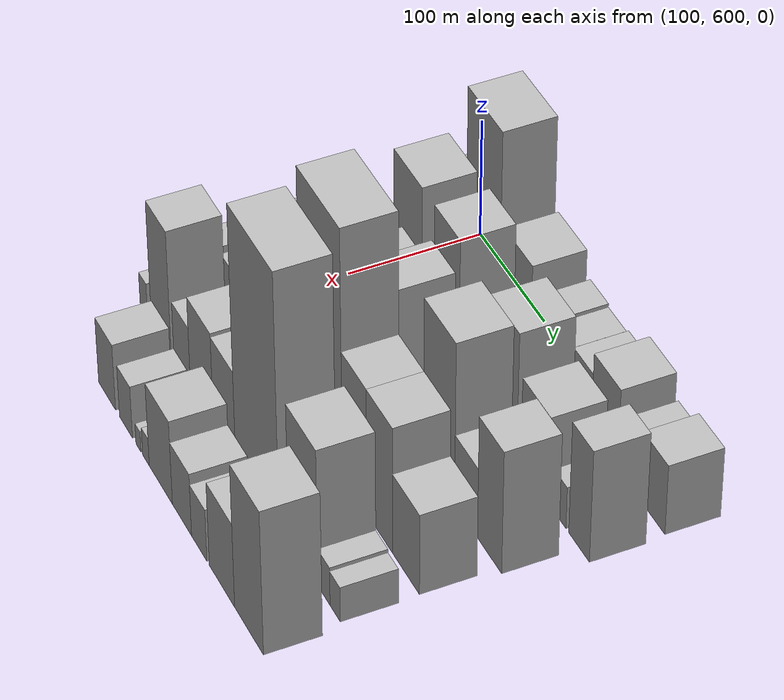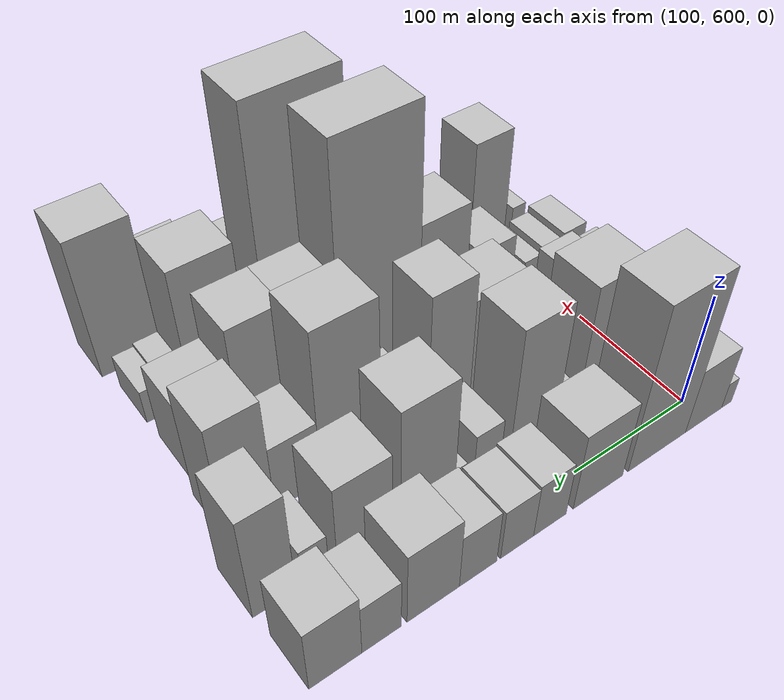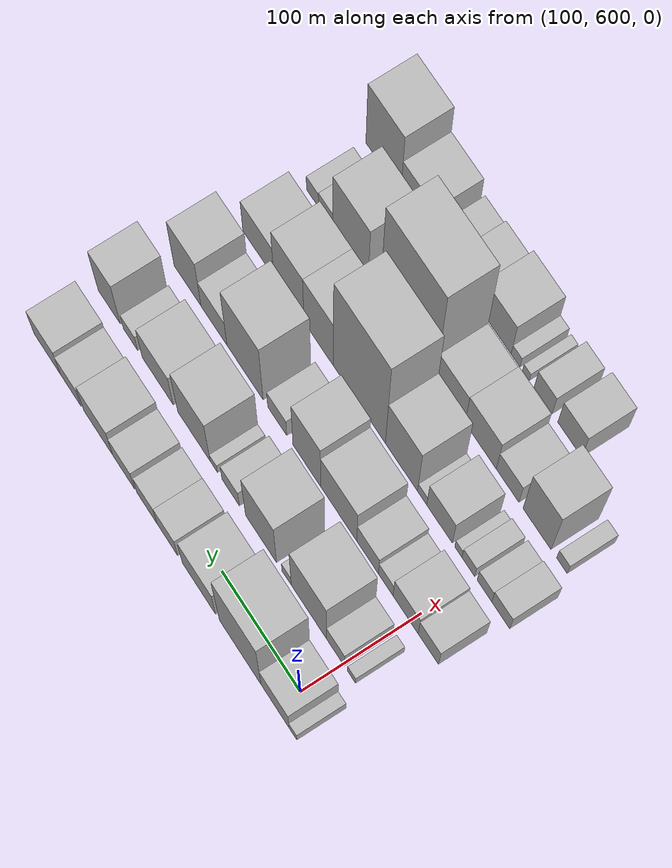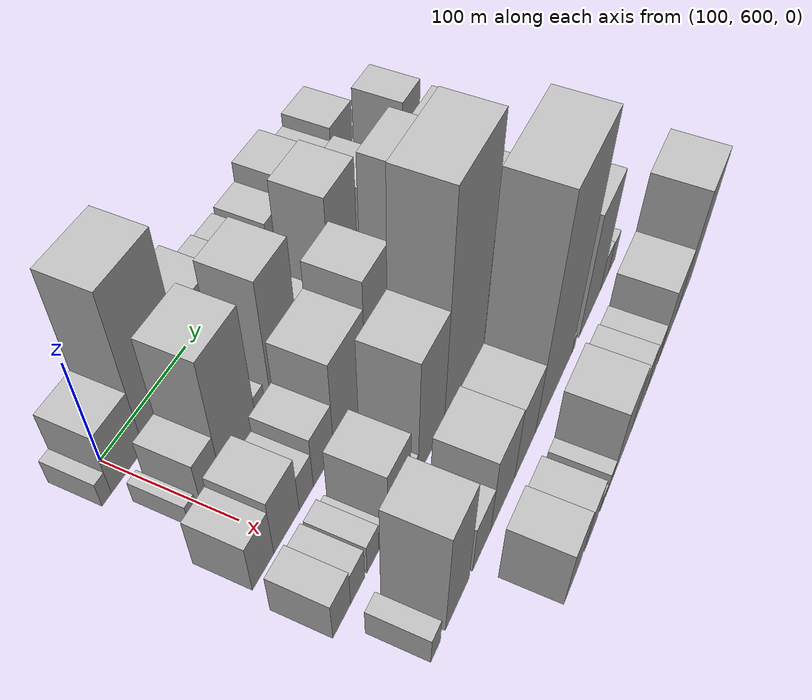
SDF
<sdf version="1.6">
 <world name="default">
  <model name="building_45">
   <static>1</static>
   <pose>100.0000 578.1978 0 0.000000 0.000000 0.000000</pose>
   <link name="link">
    <pose>0 0 12.00 0 0 0</pose>
    <collision name="collision"><geometry><box><size>40.0000 9.8584 24.0000</size></box></geometry></collision>
    <visual name="visual">
     <cast_shadows>0</cast_shadows>
     <geometry><box><size>40.0000 9.8584 24.0000</size></box></geometry>
     <material>
      <script>
       <uri>model://HANNAS_wall/materials/scripts</uri>
       <uri>model://HANNAS_wall/materials/textures</uri>
       <name>vrc/HANNAS_wall</name>
      </script>
     </material>
    </visual>
   </link>
  </model>
  <model name="building_46">
   <static>1</static>
   <pose>100.0000 600.8912 0 0.000000 0.000000 0.000000</pose>
   <link name="link">
    <pose>0 0 30.00 0 0 0</pose>
    <collision name="collision"><geometry><box><size>40.0000 35.5284 60.0000</size></box></geometry></collision>
    <visual name="visual">
     <cast_shadows>0</cast_shadows>
     <geometry><box><size>40.0000 35.5284 60.0000</size></box></geometry>
     <material>
      <script>
       <uri>model://HANNAS_wall/materials/scripts</uri>
       <uri>model://HANNAS_wall/materials/textures</uri>
       <name>vrc/HANNAS_wall</name>
      </script>
     </material>
    </visual>
   </link>
  </model>
  <model name="building_47">
   <static>1</static>
   <pose>100.0000 645.2896 0 0.000000 0.000000 0.000000</pose>
   <link name="link">
    <pose>0 0 75.00 0 0 0</pose>
    <collision name="collision"><geometry><box><size>40.0000 53.2685 150.0000</size></box></geometry></collision>
    <visual name="visual">
     <cast_shadows>0</cast_shadows>
     <geometry><box><size>40.0000 53.2685 150.0000</size></box></geometry>
     <material>
      <script>
       <uri>model://HANNAS_wall/materials/scripts</uri>
       <uri>model://HANNAS_wall/materials/textures</uri>
       <name>vrc/HANNAS_wall</name>
      </script>
     </material>
    </visual>
   </link>
  </model>
  <model name="building_48">
   <static>1</static>
   <pose>100.0000 698.4418 0 0.000000 0.000000 0.000000</pose>
   <link name="link">
    <pose>0 0 36.00 0 0 0</pose>
    <collision name="collision"><geometry><box><size>40.0000 43.0359 72.0000</size></box></geometry></collision>
    <visual name="visual">
     <cast_shadows>0</cast_shadows>
     <geometry><box><size>40.0000 43.0359 72.0000</size></box></geometry>
     <material>
      <script>
       <uri>model://HANNAS_wall/materials/scripts</uri>
       <uri>model://HANNAS_wall/materials/textures</uri>
       <name>vrc/HANNAS_wall</name>
      </script>
     </material>
    </visual>
   </link>
  </model>
  <model name="building_49">
   <static>1</static>
   <pose>100.0000 739.4240 0 0.000000 0.000000 0.000000</pose>
   <link name="link">
    <pose>0 0 25.50 0 0 0</pose>
    <collision name="collision"><geometry><box><size>40.0000 26.9285 51.0000</size></box></geometry></collision>
    <visual name="visual">
     <cast_shadows>0</cast_shadows>
     <geometry><box><size>40.0000 26.9285 51.0000</size></box></geometry>
     <material>
      <script>
       <uri>model://HANNAS_wall/materials/scripts</uri>
       <uri>model://HANNAS_wall/materials/textures</uri>
       <name>vrc/HANNAS_wall</name>
      </script>
     </material>
    </visual>
   </link>
  </model>
  <model name="building_50">
   <static>1</static>
   <pose>100.0000 766.0559 0 0.000000 0.000000 0.000000</pose>
   <link name="link">
    <pose>0 0 24.00 0 0 0</pose>
    <collision name="collision"><geometry><box><size>40.0000 26.3352 48.0000</size></box></geometry></collision>
    <visual name="visual">
     <cast_shadows>0</cast_shadows>
     <geometry><box><size>40.0000 26.3352 48.0000</size></box></geometry>
     <material>
      <script>
       <uri>model://HANNAS_wall/materials/scripts</uri>
       <uri>model://HANNAS_wall/materials/textures</uri>
       <name>vrc/HANNAS_wall</name>
      </script>
     </material>
    </visual>
   </link>
  </model>
  <model name="building_51">
   <static>1</static>
   <pose>100.0000 796.5793 0 0.000000 0.000000 0.000000</pose>
   <link name="link">
    <pose>0 0 25.50 0 0 0</pose>
    <collision name="collision"><geometry><box><size>40.0000 28.7116 51.0000</size></box></geometry></collision>
    <visual name="visual">
     <cast_shadows>0</cast_shadows>
     <geometry><box><size>40.0000 28.7116 51.0000</size></box></geometry>
     <material>
      <script>
       <uri>model://HANNAS_wall/materials/scripts</uri>
       <uri>model://HANNAS_wall/materials/textures</uri>
       <name>vrc/HANNAS_wall</name>
      </script>
     </material>
    </visual>
   </link>
  </model>
  <model name="building_52">
   <static>1</static>
   <pose>100.0000 830.1415 0 0.000000 0.000000 0.000000</pose>
   <link name="link">
    <pose>0 0 34.50 0 0 0</pose>
    <collision name="collision"><geometry><box><size>40.0000 38.4129 69.0000</size></box></geometry></collision>
    <visual name="visual">
     <cast_shadows>0</cast_shadows>
     <geometry><box><size>40.0000 38.4129 69.0000</size></box></geometry>
     <material>
      <script>
       <uri>model://HANNAS_wall/materials/scripts</uri>
       <uri>model://HANNAS_wall/materials/textures</uri>
       <name>vrc/HANNAS_wall</name>
      </script>
     </material>
    </visual>
   </link>
  </model>
  <model name="building_53">
   <static>1</static>
   <pose>100.0000 867.1216 0 0.000000 0.000000 0.000000</pose>
   <link name="link">
    <pose>0 0 24.00 0 0 0</pose>
    <collision name="collision"><geometry><box><size>40.0000 27.5473 48.0000</size></box></geometry></collision>
    <visual name="visual">
     <cast_shadows>0</cast_shadows>
     <geometry><box><size>40.0000 27.5473 48.0000</size></box></geometry>
     <material>
      <script>
       <uri>model://HANNAS_wall/materials/scripts</uri>
       <uri>model://HANNAS_wall/materials/textures</uri>
       <name>vrc/HANNAS_wall</name>
      </script>
     </material>
    </visual>
   </link>
  </model>
  <model name="building_54">
   <static>1</static>
   <pose>100.0000 898.6010 0 0.000000 0.000000 0.000000</pose>
   <link name="link">
    <pose>0 0 30.00 0 0 0</pose>
    <collision name="collision"><geometry><box><size>40.0000 35.4115 60.0000</size></box></geometry></collision>
    <visual name="visual">
     <cast_shadows>0</cast_shadows>
     <geometry><box><size>40.0000 35.4115 60.0000</size></box></geometry>
     <material>
      <script>
       <uri>model://HANNAS_wall/materials/scripts</uri>
       <uri>model://HANNAS_wall/materials/textures</uri>
       <name>vrc/HANNAS_wall</name>
      </script>
     </material>
    </visual>
   </link>
  </model>
  <model name="building_93">
   <static>1</static>
   <pose>155.0000 589.1931 0 0.000000 0.000000 0.000000</pose>
   <link name="link">
    <pose>0 0 10.50 0 0 0</pose>
    <collision name="collision"><geometry><box><size>40.0000 10.1146 21.0000</size></box></geometry></collision>
    <visual name="visual">
     <cast_shadows>0</cast_shadows>
     <geometry><box><size>40.0000 10.1146 21.0000</size></box></geometry>
     <material>
      <script>
       <uri>model://HANNAS_wall/materials/scripts</uri>
       <uri>model://HANNAS_wall/materials/textures</uri>
       <name>vrc/HANNAS_wall</name>
      </script>
     </material>
    </visual>
   </link>
  </model>
  <model name="building_94">
   <static>1</static>
   <pose>155.0000 609.5684 0 0.000000 0.000000 0.000000</pose>
   <link name="link">
    <pose>0 0 22.50 0 0 0</pose>
    <collision name="collision"><geometry><box><size>40.0000 22.6360 45.0000</size></box></geometry></collision>
    <visual name="visual">
     <cast_shadows>0</cast_shadows>
     <geometry><box><size>40.0000 22.6360 45.0000</size></box></geometry>
     <material>
      <script>
       <uri>model://HANNAS_wall/materials/scripts</uri>
       <uri>model://HANNAS_wall/materials/textures</uri>
       <name>vrc/HANNAS_wall</name>
      </script>
     </material>
    </visual>
   </link>
  </model>
  <model name="building_95">
   <static>1</static>
   <pose>155.0000 643.2905 0 0.000000 0.000000 0.000000</pose>
   <link name="link">
    <pose>0 0 58.50 0 0 0</pose>
    <collision name="collision"><geometry><box><size>40.0000 44.8080 117.0000</size></box></geometry></collision>
    <visual name="visual">
     <cast_shadows>0</cast_shadows>
     <geometry><box><size>40.0000 44.8080 117.0000</size></box></geometry>
     <material>
      <script>
       <uri>model://HANNAS_wall/materials/scripts</uri>
       <uri>model://HANNAS_wall/materials/textures</uri>
       <name>vrc/HANNAS_wall</name>
      </script>
     </material>
    </visual>
   </link>
  </model>
  <model name="building_96">
   <static>1</static>
   <pose>155.0000 671.6743 0 0.000000 0.000000 0.000000</pose>
   <link name="link">
    <pose>0 0 13.50 0 0 0</pose>
    <collision name="collision"><geometry><box><size>40.0000 11.9597 27.0000</size></box></geometry></collision>
    <visual name="visual">
     <cast_shadows>0</cast_shadows>
     <geometry><box><size>40.0000 11.9597 27.0000</size></box></geometry>
     <material>
      <script>
       <uri>model://HANNAS_wall/materials/scripts</uri>
       <uri>model://HANNAS_wall/materials/textures</uri>
       <name>vrc/HANNAS_wall</name>
      </script>
     </material>
    </visual>
   </link>
  </model>
  <model name="building_97">
   <static>1</static>
   <pose>155.0000 704.5367 0 0.000000 0.000000 0.000000</pose>
   <link name="link">
    <pose>0 0 58.50 0 0 0</pose>
    <collision name="collision"><geometry><box><size>40.0000 39.7651 117.0000</size></box></geometry></collision>
    <visual name="visual">
     <cast_shadows>0</cast_shadows>
     <geometry><box><size>40.0000 39.7651 117.0000</size></box></geometry>
     <material>
      <script>
       <uri>model://HANNAS_wall/materials/scripts</uri>
       <uri>model://HANNAS_wall/materials/textures</uri>
       <name>vrc/HANNAS_wall</name>
      </script>
     </material>
    </visual>
   </link>
  </model>
  <model name="building_98">
   <static>1</static>
   <pose>155.0000 743.6605 0 0.000000 0.000000 0.000000</pose>
   <link name="link">
    <pose>0 0 21.00 0 0 0</pose>
    <collision name="collision"><geometry><box><size>40.0000 22.4826 42.0000</size></box></geometry></collision>
    <visual name="visual">
     <cast_shadows>0</cast_shadows>
     <geometry><box><size>40.0000 22.4826 42.0000</size></box></geometry>
     <material>
      <script>
       <uri>model://HANNAS_wall/materials/scripts</uri>
       <uri>model://HANNAS_wall/materials/textures</uri>
       <name>vrc/HANNAS_wall</name>
      </script>
     </material>
    </visual>
   </link>
  </model>
  <model name="building_99">
   <static>1</static>
   <pose>155.0000 765.6775 0 0.000000 0.000000 0.000000</pose>
   <link name="link">
    <pose>0 0 10.50 0 0 0</pose>
    <collision name="collision"><geometry><box><size>40.0000 9.5513 21.0000</size></box></geometry></collision>
    <visual name="visual">
     <cast_shadows>0</cast_shadows>
     <geometry><box><size>40.0000 9.5513 21.0000</size></box></geometry>
     <material>
      <script>
       <uri>model://HANNAS_wall/materials/scripts</uri>
       <uri>model://HANNAS_wall/materials/textures</uri>
       <name>vrc/HANNAS_wall</name>
      </script>
     </material>
    </visual>
   </link>
  </model>
  <model name="building_100">
   <static>1</static>
   <pose>155.0000 791.6637 0 0.000000 0.000000 0.000000</pose>
   <link name="link">
    <pose>0 0 54.00 0 0 0</pose>
    <collision name="collision"><geometry><box><size>40.0000 42.4212 108.0000</size></box></geometry></collision>
    <visual name="visual">
     <cast_shadows>0</cast_shadows>
     <geometry><box><size>40.0000 42.4212 108.0000</size></box></geometry>
     <material>
      <script>
       <uri>model://HANNAS_wall/materials/scripts</uri>
       <uri>model://HANNAS_wall/materials/textures</uri>
       <name>vrc/HANNAS_wall</name>
      </script>
     </material>
    </visual>
   </link>
  </model>
  <model name="building_101">
   <static>1</static>
   <pose>155.0000 839.4511 0 0.000000 0.000000 0.000000</pose>
   <link name="link">
    <pose>0 0 37.50 0 0 0</pose>
    <collision name="collision"><geometry><box><size>40.0000 41.1534 75.0000</size></box></geometry></collision>
    <visual name="visual">
     <cast_shadows>0</cast_shadows>
     <geometry><box><size>40.0000 41.1534 75.0000</size></box></geometry>
     <material>
      <script>
       <uri>model://HANNAS_wall/materials/scripts</uri>
       <uri>model://HANNAS_wall/materials/textures</uri>
       <name>vrc/HANNAS_wall</name>
      </script>
     </material>
    </visual>
   </link>
  </model>
  <model name="building_102">
   <static>1</static>
   <pose>155.0000 875.5806 0 0.000000 0.000000 0.000000</pose>
   <link name="link">
    <pose>0 0 18.00 0 0 0</pose>
    <collision name="collision"><geometry><box><size>40.0000 19.1056 36.0000</size></box></geometry></collision>
    <visual name="visual">
     <cast_shadows>0</cast_shadows>
     <geometry><box><size>40.0000 19.1056 36.0000</size></box></geometry>
     <material>
      <script>
       <uri>model://HANNAS_wall/materials/scripts</uri>
       <uri>model://HANNAS_wall/materials/textures</uri>
       <name>vrc/HANNAS_wall</name>
      </script>
     </material>
    </visual>
   </link>
  </model>
  <model name="building_103">
   <static>1</static>
   <pose>155.0000 903.9660 0 0.000000 0.000000 0.000000</pose>
   <link name="link">
    <pose>0 0 48.00 0 0 0</pose>
    <collision name="collision"><geometry><box><size>40.0000 29.6651 96.0000</size></box></geometry></collision>
    <visual name="visual">
     <cast_shadows>0</cast_shadows>
     <geometry><box><size>40.0000 29.6651 96.0000</size></box></geometry>
     <material>
      <script>
       <uri>model://HANNAS_wall/materials/scripts</uri>
       <uri>model://HANNAS_wall/materials/textures</uri>
       <name>vrc/HANNAS_wall</name>
      </script>
     </material>
    </visual>
   </link>
  </model>
  <model name="building_146">
   <static>1</static>
   <pose>210.0000 576.7149 0 0.000000 0.000000 0.000000</pose>
   <link name="link">
    <pose>0 0 24.00 0 0 0</pose>
    <collision name="collision"><geometry><box><size>40.0000 25.4367 48.0000</size></box></geometry></collision>
    <visual name="visual">
     <cast_shadows>0</cast_shadows>
     <geometry><box><size>40.0000 25.4367 48.0000</size></box></geometry>
     <material>
      <script>
       <uri>model://HANNAS_wall/materials/scripts</uri>
       <uri>model://HANNAS_wall/materials/textures</uri>
       <name>vrc/HANNAS_wall</name>
      </script>
     </material>
    </visual>
   </link>
  </model>
  <model name="building_147">
   <static>1</static>
   <pose>210.0000 605.2131 0 0.000000 0.000000 0.000000</pose>
   <link name="link">
    <pose>0 0 28.50 0 0 0</pose>
    <collision name="collision"><geometry><box><size>40.0000 31.5597 57.0000</size></box></geometry></collision>
    <visual name="visual">
     <cast_shadows>0</cast_shadows>
     <geometry><box><size>40.0000 31.5597 57.0000</size></box></geometry>
     <material>
      <script>
       <uri>model://HANNAS_wall/materials/scripts</uri>
       <uri>model://HANNAS_wall/materials/textures</uri>
       <name>vrc/HANNAS_wall</name>
      </script>
     </material>
    </visual>
   </link>
  </model>
  <model name="building_148">
   <static>1</static>
   <pose>210.0000 630.2211 0 0.000000 0.000000 0.000000</pose>
   <link name="link">
    <pose>0 0 18.00 0 0 0</pose>
    <collision name="collision"><geometry><box><size>40.0000 18.4562 36.0000</size></box></geometry></collision>
    <visual name="visual">
     <cast_shadows>0</cast_shadows>
     <geometry><box><size>40.0000 18.4562 36.0000</size></box></geometry>
     <material>
      <script>
       <uri>model://HANNAS_wall/materials/scripts</uri>
       <uri>model://HANNAS_wall/materials/textures</uri>
       <name>vrc/HANNAS_wall</name>
      </script>
     </material>
    </visual>
   </link>
  </model>
  <model name="building_149">
   <static>1</static>
   <pose>210.0000 653.2217 0 0.000000 0.000000 0.000000</pose>
   <link name="link">
    <pose>0 0 25.50 0 0 0</pose>
    <collision name="collision"><geometry><box><size>40.0000 27.5450 51.0000</size></box></geometry></collision>
    <visual name="visual">
     <cast_shadows>0</cast_shadows>
     <geometry><box><size>40.0000 27.5450 51.0000</size></box></geometry>
     <material>
      <script>
       <uri>model://HANNAS_wall/materials/scripts</uri>
       <uri>model://HANNAS_wall/materials/textures</uri>
       <name>vrc/HANNAS_wall</name>
      </script>
     </material>
    </visual>
   </link>
  </model>
  <model name="building_150">
   <static>1</static>
   <pose>210.0000 689.9725 0 0.000000 0.000000 0.000000</pose>
   <link name="link">
    <pose>0 0 45.00 0 0 0</pose>
    <collision name="collision"><geometry><box><size>40.0000 45.9565 90.0000</size></box></geometry></collision>
    <visual name="visual">
     <cast_shadows>0</cast_shadows>
     <geometry><box><size>40.0000 45.9565 90.0000</size></box></geometry>
     <material>
      <script>
       <uri>model://HANNAS_wall/materials/scripts</uri>
       <uri>model://HANNAS_wall/materials/textures</uri>
       <name>vrc/HANNAS_wall</name>
      </script>
     </material>
    </visual>
   </link>
  </model>
  <model name="building_151">
   <static>1</static>
   <pose>210.0000 730.8962 0 0.000000 0.000000 0.000000</pose>
   <link name="link">
    <pose>0 0 57.00 0 0 0</pose>
    <collision name="collision"><geometry><box><size>40.0000 35.8911 114.0000</size></box></geometry></collision>
    <visual name="visual">
     <cast_shadows>0</cast_shadows>
     <geometry><box><size>40.0000 35.8911 114.0000</size></box></geometry>
     <material>
      <script>
       <uri>model://HANNAS_wall/materials/scripts</uri>
       <uri>model://HANNAS_wall/materials/textures</uri>
       <name>vrc/HANNAS_wall</name>
      </script>
     </material>
    </visual>
   </link>
  </model>
  <model name="building_152">
   <static>1</static>
   <pose>210.0000 769.1868 0 0.000000 0.000000 0.000000</pose>
   <link name="link">
    <pose>0 0 21.00 0 0 0</pose>
    <collision name="collision"><geometry><box><size>40.0000 24.6900 42.0000</size></box></geometry></collision>
    <visual name="visual">
     <cast_shadows>0</cast_shadows>
     <geometry><box><size>40.0000 24.6900 42.0000</size></box></geometry>
     <material>
      <script>
       <uri>model://HANNAS_wall/materials/scripts</uri>
       <uri>model://HANNAS_wall/materials/textures</uri>
       <name>vrc/HANNAS_wall</name>
      </script>
     </material>
    </visual>
   </link>
  </model>
  <model name="building_153">
   <static>1</static>
   <pose>210.0000 811.1720 0 0.000000 0.000000 0.000000</pose>
   <link name="link">
    <pose>0 0 69.00 0 0 0</pose>
    <collision name="collision"><geometry><box><size>40.0000 47.2804 138.0000</size></box></geometry></collision>
    <visual name="visual">
     <cast_shadows>0</cast_shadows>
     <geometry><box><size>40.0000 47.2804 138.0000</size></box></geometry>
     <material>
      <script>
       <uri>model://HANNAS_wall/materials/scripts</uri>
       <uri>model://HANNAS_wall/materials/textures</uri>
       <name>vrc/HANNAS_wall</name>
      </script>
     </material>
    </visual>
   </link>
  </model>
  <model name="building_154">
   <static>1</static>
   <pose>210.0000 851.9884 0 0.000000 0.000000 0.000000</pose>
   <link name="link">
    <pose>0 0 30.00 0 0 0</pose>
    <collision name="collision"><geometry><box><size>40.0000 34.3523 60.0000</size></box></geometry></collision>
    <visual name="visual">
     <cast_shadows>0</cast_shadows>
     <geometry><box><size>40.0000 34.3523 60.0000</size></box></geometry>
     <material>
      <script>
       <uri>model://HANNAS_wall/materials/scripts</uri>
       <uri>model://HANNAS_wall/materials/textures</uri>
       <name>vrc/HANNAS_wall</name>
      </script>
     </material>
    </visual>
   </link>
  </model>
  <model name="building_155">
   <static>1</static>
   <pose>210.0000 887.0490 0 0.000000 0.000000 0.000000</pose>
   <link name="link">
    <pose>0 0 52.50 0 0 0</pose>
    <collision name="collision"><geometry><box><size>40.0000 35.7690 105.0000</size></box></geometry></collision>
    <visual name="visual">
     <cast_shadows>0</cast_shadows>
     <geometry><box><size>40.0000 35.7690 105.0000</size></box></geometry>
     <material>
      <script>
       <uri>model://HANNAS_wall/materials/scripts</uri>
       <uri>model://HANNAS_wall/materials/textures</uri>
       <name>vrc/HANNAS_wall</name>
      </script>
     </material>
    </visual>
   </link>
  </model>
  <model name="building_195">
   <static>1</static>
   <pose>265.0000 568.9908 0 0.000000 0.000000 0.000000</pose>
   <link name="link">
    <pose>0 0 19.50 0 0 0</pose>
    <collision name="collision"><geometry><box><size>40.0000 22.3531 39.0000</size></box></geometry></collision>
    <visual name="visual">
     <cast_shadows>0</cast_shadows>
     <geometry><box><size>40.0000 22.3531 39.0000</size></box></geometry>
     <material>
      <script>
       <uri>model://HANNAS_wall/materials/scripts</uri>
       <uri>model://HANNAS_wall/materials/textures</uri>
       <name>vrc/HANNAS_wall</name>
      </script>
     </material>
    </visual>
   </link>
  </model>
  <model name="building_196">
   <static>1</static>
   <pose>265.0000 589.3257 0 0.000000 0.000000 0.000000</pose>
   <link name="link">
    <pose>0 0 16.50 0 0 0</pose>
    <collision name="collision"><geometry><box><size>40.0000 18.3167 33.0000</size></box></geometry></collision>
    <visual name="visual">
     <cast_shadows>0</cast_shadows>
     <geometry><box><size>40.0000 18.3167 33.0000</size></box></geometry>
     <material>
      <script>
       <uri>model://HANNAS_wall/materials/scripts</uri>
       <uri>model://HANNAS_wall/materials/textures</uri>
       <name>vrc/HANNAS_wall</name>
      </script>
     </material>
    </visual>
   </link>
  </model>
  <model name="building_197">
   <static>1</static>
   <pose>265.0000 609.4988 0 0.000000 0.000000 0.000000</pose>
   <link name="link">
    <pose>0 0 15.00 0 0 0</pose>
    <collision name="collision"><geometry><box><size>40.0000 16.0295 30.0000</size></box></geometry></collision>
    <visual name="visual">
     <cast_shadows>0</cast_shadows>
     <geometry><box><size>40.0000 16.0295 30.0000</size></box></geometry>
     <material>
      <script>
       <uri>model://HANNAS_wall/materials/scripts</uri>
       <uri>model://HANNAS_wall/materials/textures</uri>
       <name>vrc/HANNAS_wall</name>
      </script>
     </material>
    </visual>
   </link>
  </model>
  <model name="building_198">
   <static>1</static>
   <pose>265.0000 622.0461 0 0.000000 0.000000 0.000000</pose>
   <link name="link">
    <pose>0 0 10.50 0 0 0</pose>
    <collision name="collision"><geometry><box><size>40.0000 9.0651 21.0000</size></box></geometry></collision>
    <visual name="visual">
     <cast_shadows>0</cast_shadows>
     <geometry><box><size>40.0000 9.0651 21.0000</size></box></geometry>
     <material>
      <script>
       <uri>model://HANNAS_wall/materials/scripts</uri>
       <uri>model://HANNAS_wall/materials/textures</uri>
       <name>vrc/HANNAS_wall</name>
      </script>
     </material>
    </visual>
   </link>
  </model>
  <model name="building_199">
   <static>1</static>
   <pose>265.0000 645.7452 0 0.000000 0.000000 0.000000</pose>
   <link name="link">
    <pose>0 0 31.50 0 0 0</pose>
    <collision name="collision"><geometry><box><size>40.0000 32.3332 63.0000</size></box></geometry></collision>
    <visual name="visual">
     <cast_shadows>0</cast_shadows>
     <geometry><box><size>40.0000 32.3332 63.0000</size></box></geometry>
     <material>
      <script>
       <uri>model://HANNAS_wall/materials/scripts</uri>
       <uri>model://HANNAS_wall/materials/textures</uri>
       <name>vrc/HANNAS_wall</name>
      </script>
     </material>
    </visual>
   </link>
  </model>
  <model name="building_200">
   <static>1</static>
   <pose>265.0000 667.7221 0 0.000000 0.000000 0.000000</pose>
   <link name="link">
    <pose>0 0 12.00 0 0 0</pose>
    <collision name="collision"><geometry><box><size>40.0000 11.6206 24.0000</size></box></geometry></collision>
    <visual name="visual">
     <cast_shadows>0</cast_shadows>
     <geometry><box><size>40.0000 11.6206 24.0000</size></box></geometry>
     <material>
      <script>
       <uri>model://HANNAS_wall/materials/scripts</uri>
       <uri>model://HANNAS_wall/materials/textures</uri>
       <name>vrc/HANNAS_wall</name>
      </script>
     </material>
    </visual>
   </link>
  </model>
  <model name="building_201">
   <static>1</static>
   <pose>265.0000 694.0253 0 0.000000 0.000000 0.000000</pose>
   <link name="link">
    <pose>0 0 57.00 0 0 0</pose>
    <collision name="collision"><geometry><box><size>40.0000 40.9858 114.0000</size></box></geometry></collision>
    <visual name="visual">
     <cast_shadows>0</cast_shadows>
     <geometry><box><size>40.0000 40.9858 114.0000</size></box></geometry>
     <material>
      <script>
       <uri>model://HANNAS_wall/materials/scripts</uri>
       <uri>model://HANNAS_wall/materials/textures</uri>
       <name>vrc/HANNAS_wall</name>
      </script>
     </material>
    </visual>
   </link>
  </model>
  <model name="building_202">
   <static>1</static>
   <pose>265.0000 747.9610 0 0.000000 0.000000 0.000000</pose>
   <link name="link">
    <pose>0 0 105.00 0 0 0</pose>
    <collision name="collision"><geometry><box><size>40.0000 66.8857 210.0000</size></box></geometry></collision>
    <visual name="visual">
     <cast_shadows>0</cast_shadows>
     <geometry><box><size>40.0000 66.8857 210.0000</size></box></geometry>
     <material>
      <script>
       <uri>model://HANNAS_wall/materials/scripts</uri>
       <uri>model://HANNAS_wall/materials/textures</uri>
       <name>vrc/HANNAS_wall</name>
      </script>
     </material>
    </visual>
   </link>
  </model>
  <model name="building_203">
   <static>1</static>
   <pose>265.0000 800.6106 0 0.000000 0.000000 0.000000</pose>
   <link name="link">
    <pose>0 0 54.00 0 0 0</pose>
    <collision name="collision"><geometry><box><size>40.0000 38.4134 108.0000</size></box></geometry></collision>
    <visual name="visual">
     <cast_shadows>0</cast_shadows>
     <geometry><box><size>40.0000 38.4134 108.0000</size></box></geometry>
     <material>
      <script>
       <uri>model://HANNAS_wall/materials/scripts</uri>
       <uri>model://HANNAS_wall/materials/textures</uri>
       <name>vrc/HANNAS_wall</name>
      </script>
     </material>
    </visual>
   </link>
  </model>
  <model name="building_204">
   <static>1</static>
   <pose>265.0000 839.6689 0 0.000000 0.000000 0.000000</pose>
   <link name="link">
    <pose>0 0 54.00 0 0 0</pose>
    <collision name="collision"><geometry><box><size>40.0000 39.7031 108.0000</size></box></geometry></collision>
    <visual name="visual">
     <cast_shadows>0</cast_shadows>
     <geometry><box><size>40.0000 39.7031 108.0000</size></box></geometry>
     <material>
      <script>
       <uri>model://HANNAS_wall/materials/scripts</uri>
       <uri>model://HANNAS_wall/materials/textures</uri>
       <name>vrc/HANNAS_wall</name>
      </script>
     </material>
    </visual>
   </link>
  </model>
  <model name="building_205">
   <static>1</static>
   <pose>265.0000 879.8198 0 0.000000 0.000000 0.000000</pose>
   <link name="link">
    <pose>0 0 34.50 0 0 0</pose>
    <collision name="collision"><geometry><box><size>40.0000 40.5987 69.0000</size></box></geometry></collision>
    <visual name="visual">
     <cast_shadows>0</cast_shadows>
     <geometry><box><size>40.0000 40.5987 69.0000</size></box></geometry>
     <material>
      <script>
       <uri>model://HANNAS_wall/materials/scripts</uri>
       <uri>model://HANNAS_wall/materials/textures</uri>
       <name>vrc/HANNAS_wall</name>
      </script>
     </material>
    </visual>
   </link>
  </model>
  <model name="building_249">
   <static>1</static>
   <pose>320.0000 574.8454 0 0.000000 0.000000 0.000000</pose>
   <link name="link">
    <pose>0 0 13.50 0 0 0</pose>
    <collision name="collision"><geometry><box><size>40.0000 13.2148 27.0000</size></box></geometry></collision>
    <visual name="visual">
     <cast_shadows>0</cast_shadows>
     <geometry><box><size>40.0000 13.2148 27.0000</size></box></geometry>
     <material>
      <script>
       <uri>model://HANNAS_wall/materials/scripts</uri>
       <uri>model://HANNAS_wall/materials/textures</uri>
       <name>vrc/HANNAS_wall</name>
      </script>
     </material>
    </visual>
   </link>
  </model>
  <model name="building_250">
   <static>1</static>
   <pose>320.0000 605.8920 0 0.000000 0.000000 0.000000</pose>
   <link name="link">
    <pose>0 0 52.50 0 0 0</pose>
    <collision name="collision"><geometry><box><size>40.0000 34.8783 105.0000</size></box></geometry></collision>
    <visual name="visual">
     <cast_shadows>0</cast_shadows>
     <geometry><box><size>40.0000 34.8783 105.0000</size></box></geometry>
     <material>
      <script>
       <uri>model://HANNAS_wall/materials/scripts</uri>
       <uri>model://HANNAS_wall/materials/textures</uri>
       <name>vrc/HANNAS_wall</name>
      </script>
     </material>
    </visual>
   </link>
  </model>
  <model name="building_251">
   <static>1</static>
   <pose>320.0000 642.5964 0 0.000000 0.000000 0.000000</pose>
   <link name="link">
    <pose>0 0 24.00 0 0 0</pose>
    <collision name="collision"><geometry><box><size>40.0000 28.5306 48.0000</size></box></geometry></collision>
    <visual name="visual">
     <cast_shadows>0</cast_shadows>
     <geometry><box><size>40.0000 28.5306 48.0000</size></box></geometry>
     <material>
      <script>
       <uri>model://HANNAS_wall/materials/scripts</uri>
       <uri>model://HANNAS_wall/materials/textures</uri>
       <name>vrc/HANNAS_wall</name>
      </script>
     </material>
    </visual>
   </link>
  </model>
  <model name="building_252">
   <static>1</static>
   <pose>320.0000 676.5827 0 0.000000 0.000000 0.000000</pose>
   <link name="link">
    <pose>0 0 37.50 0 0 0</pose>
    <collision name="collision"><geometry><box><size>40.0000 39.4419 75.0000</size></box></geometry></collision>
    <visual name="visual">
     <cast_shadows>0</cast_shadows>
     <geometry><box><size>40.0000 39.4419 75.0000</size></box></geometry>
     <material>
      <script>
       <uri>model://HANNAS_wall/materials/scripts</uri>
       <uri>model://HANNAS_wall/materials/textures</uri>
       <name>vrc/HANNAS_wall</name>
      </script>
     </material>
    </visual>
   </link>
  </model>
  <model name="building_253">
   <static>1</static>
   <pose>320.0000 714.9150 0 0.000000 0.000000 0.000000</pose>
   <link name="link">
    <pose>0 0 36.00 0 0 0</pose>
    <collision name="collision"><geometry><box><size>40.0000 37.2227 72.0000</size></box></geometry></collision>
    <visual name="visual">
     <cast_shadows>0</cast_shadows>
     <geometry><box><size>40.0000 37.2227 72.0000</size></box></geometry>
     <material>
      <script>
       <uri>model://HANNAS_wall/materials/scripts</uri>
       <uri>model://HANNAS_wall/materials/textures</uri>
       <name>vrc/HANNAS_wall</name>
      </script>
     </material>
    </visual>
   </link>
  </model>
  <model name="building_254">
   <static>1</static>
   <pose>320.0000 769.2533 0 0.000000 0.000000 0.000000</pose>
   <link name="link">
    <pose>0 0 106.50 0 0 0</pose>
    <collision name="collision"><geometry><box><size>40.0000 71.4540 213.0000</size></box></geometry></collision>
    <visual name="visual">
     <cast_shadows>0</cast_shadows>
     <geometry><box><size>40.0000 71.4540 213.0000</size></box></geometry>
     <material>
      <script>
       <uri>model://HANNAS_wall/materials/scripts</uri>
       <uri>model://HANNAS_wall/materials/textures</uri>
       <name>vrc/HANNAS_wall</name>
      </script>
     </material>
    </visual>
   </link>
  </model>
  <model name="building_255">
   <static>1</static>
   <pose>320.0000 808.2574 0 0.000000 0.000000 0.000000</pose>
   <link name="link">
    <pose>0 0 7.50 0 0 0</pose>
    <collision name="collision"><geometry><box><size>40.0000 6.5543 15.0000</size></box></geometry></collision>
    <visual name="visual">
     <cast_shadows>0</cast_shadows>
     <geometry><box><size>40.0000 6.5543 15.0000</size></box></geometry>
     <material>
      <script>
       <uri>model://HANNAS_wall/materials/scripts</uri>
       <uri>model://HANNAS_wall/materials/textures</uri>
       <name>vrc/HANNAS_wall</name>
      </script>
     </material>
    </visual>
   </link>
  </model>
  <model name="building_256">
   <static>1</static>
   <pose>320.0000 843.7461 0 0.000000 0.000000 0.000000</pose>
   <link name="link">
    <pose>0 0 58.50 0 0 0</pose>
    <collision name="collision"><geometry><box><size>40.0000 46.4230 117.0000</size></box></geometry></collision>
    <visual name="visual">
     <cast_shadows>0</cast_shadows>
     <geometry><box><size>40.0000 46.4230 117.0000</size></box></geometry>
     <material>
      <script>
       <uri>model://HANNAS_wall/materials/scripts</uri>
       <uri>model://HANNAS_wall/materials/textures</uri>
       <name>vrc/HANNAS_wall</name>
      </script>
     </material>
    </visual>
   </link>
  </model>
  <model name="building_257">
   <static>1</static>
   <pose>320.0000 876.2550 0 0.000000 0.000000 0.000000</pose>
   <link name="link">
    <pose>0 0 16.50 0 0 0</pose>
    <collision name="collision"><geometry><box><size>40.0000 18.5948 33.0000</size></box></geometry></collision>
    <visual name="visual">
     <cast_shadows>0</cast_shadows>
     <geometry><box><size>40.0000 18.5948 33.0000</size></box></geometry>
     <material>
      <script>
       <uri>model://HANNAS_wall/materials/scripts</uri>
       <uri>model://HANNAS_wall/materials/textures</uri>
       <name>vrc/HANNAS_wall</name>
      </script>
     </material>
    </visual>
   </link>
  </model>
  <model name="building_258">
   <static>1</static>
   <pose>320.0000 893.5009 0 0.000000 0.000000 0.000000</pose>
   <link name="link">
    <pose>0 0 15.00 0 0 0</pose>
    <collision name="collision"><geometry><box><size>40.0000 15.8970 30.0000</size></box></geometry></collision>
    <visual name="visual">
     <cast_shadows>0</cast_shadows>
     <geometry><box><size>40.0000 15.8970 30.0000</size></box></geometry>
     <material>
      <script>
       <uri>model://HANNAS_wall/materials/scripts</uri>
       <uri>model://HANNAS_wall/materials/textures</uri>
       <name>vrc/HANNAS_wall</name>
      </script>
     </material>
    </visual>
   </link>
  </model>
  <model name="building_296">
   <static>1</static>
   <pose>375.0000 646.2637 0 0.000000 0.000000 0.000000</pose>
   <link name="link">
    <pose>0 0 28.50 0 0 0</pose>
    <collision name="collision"><geometry><box><size>40.0000 30.0507 57.0000</size></box></geometry></collision>
    <visual name="visual">
     <cast_shadows>0</cast_shadows>
     <geometry><box><size>40.0000 30.0507 57.0000</size></box></geometry>
     <material>
      <script>
       <uri>model://HANNAS_wall/materials/scripts</uri>
       <uri>model://HANNAS_wall/materials/textures</uri>
       <name>vrc/HANNAS_wall</name>
      </script>
     </material>
    </visual>
   </link>
  </model>
  <model name="building_297">
   <static>1</static>
   <pose>375.0000 679.6870 0 0.000000 0.000000 0.000000</pose>
   <link name="link">
    <pose>0 0 22.50 0 0 0</pose>
    <collision name="collision"><geometry><box><size>40.0000 22.7958 45.0000</size></box></geometry></collision>
    <visual name="visual">
     <cast_shadows>0</cast_shadows>
     <geometry><box><size>40.0000 22.7958 45.0000</size></box></geometry>
     <material>
      <script>
       <uri>model://HANNAS_wall/materials/scripts</uri>
       <uri>model://HANNAS_wall/materials/textures</uri>
       <name>vrc/HANNAS_wall</name>
      </script>
     </material>
    </visual>
   </link>
  </model>
  <model name="building_298">
   <static>1</static>
   <pose>375.0000 701.4432 0 0.000000 0.000000 0.000000</pose>
   <link name="link">
    <pose>0 0 9.00 0 0 0</pose>
    <collision name="collision"><geometry><box><size>40.0000 8.7166 18.0000</size></box></geometry></collision>
    <visual name="visual">
     <cast_shadows>0</cast_shadows>
     <geometry><box><size>40.0000 8.7166 18.0000</size></box></geometry>
     <material>
      <script>
       <uri>model://HANNAS_wall/materials/scripts</uri>
       <uri>model://HANNAS_wall/materials/textures</uri>
       <name>vrc/HANNAS_wall</name>
      </script>
     </material>
    </visual>
   </link>
  </model>
  <model name="building_299">
   <static>1</static>
   <pose>375.0000 714.4977 0 0.000000 0.000000 0.000000</pose>
   <link name="link">
    <pose>0 0 12.00 0 0 0</pose>
    <collision name="collision"><geometry><box><size>40.0000 11.3925 24.0000</size></box></geometry></collision>
    <visual name="visual">
     <cast_shadows>0</cast_shadows>
     <geometry><box><size>40.0000 11.3925 24.0000</size></box></geometry>
     <material>
      <script>
       <uri>model://HANNAS_wall/materials/scripts</uri>
       <uri>model://HANNAS_wall/materials/textures</uri>
       <name>vrc/HANNAS_wall</name>
      </script>
     </material>
    </visual>
   </link>
  </model>
  <model name="building_300">
   <static>1</static>
   <pose>375.0000 739.9014 0 0.000000 0.000000 0.000000</pose>
   <link name="link">
    <pose>0 0 36.00 0 0 0</pose>
    <collision name="collision"><geometry><box><size>40.0000 39.4148 72.0000</size></box></geometry></collision>
    <visual name="visual">
     <cast_shadows>0</cast_shadows>
     <geometry><box><size>40.0000 39.4148 72.0000</size></box></geometry>
     <material>
      <script>
       <uri>model://HANNAS_wall/materials/scripts</uri>
       <uri>model://HANNAS_wall/materials/textures</uri>
       <name>vrc/HANNAS_wall</name>
      </script>
     </material>
    </visual>
   </link>
  </model>
  <model name="building_301">
   <static>1</static>
   <pose>375.0000 775.6910 0 0.000000 0.000000 0.000000</pose>
   <link name="link">
    <pose>0 0 27.00 0 0 0</pose>
    <collision name="collision"><geometry><box><size>40.0000 32.1643 54.0000</size></box></geometry></collision>
    <visual name="visual">
     <cast_shadows>0</cast_shadows>
     <geometry><box><size>40.0000 32.1643 54.0000</size></box></geometry>
     <material>
      <script>
       <uri>model://HANNAS_wall/materials/scripts</uri>
       <uri>model://HANNAS_wall/materials/textures</uri>
       <name>vrc/HANNAS_wall</name>
      </script>
     </material>
    </visual>
   </link>
  </model>
  <model name="building_302">
   <static>1</static>
   <pose>375.0000 804.4200 0 0.000000 0.000000 0.000000</pose>
   <link name="link">
    <pose>0 0 22.50 0 0 0</pose>
    <collision name="collision"><geometry><box><size>40.0000 25.2937 45.0000</size></box></geometry></collision>
    <visual name="visual">
     <cast_shadows>0</cast_shadows>
     <geometry><box><size>40.0000 25.2937 45.0000</size></box></geometry>
     <material>
      <script>
       <uri>model://HANNAS_wall/materials/scripts</uri>
       <uri>model://HANNAS_wall/materials/textures</uri>
       <name>vrc/HANNAS_wall</name>
      </script>
     </material>
    </visual>
   </link>
  </model>
  <model name="building_303">
   <static>1</static>
   <pose>375.0000 841.5956 0 0.000000 0.000000 0.000000</pose>
   <link name="link">
    <pose>0 0 36.00 0 0 0</pose>
    <collision name="collision"><geometry><box><size>40.0000 41.0576 72.0000</size></box></geometry></collision>
    <visual name="visual">
     <cast_shadows>0</cast_shadows>
     <geometry><box><size>40.0000 41.0576 72.0000</size></box></geometry>
     <material>
      <script>
       <uri>model://HANNAS_wall/materials/scripts</uri>
       <uri>model://HANNAS_wall/materials/textures</uri>
       <name>vrc/HANNAS_wall</name>
      </script>
     </material>
    </visual>
   </link>
  </model>
  <model name="building_304">
   <static>1</static>
   <pose>375.0000 884.9751 0 0.000000 0.000000 0.000000</pose>
   <link name="link">
    <pose>0 0 61.50 0 0 0</pose>
    <collision name="collision"><geometry><box><size>40.0000 45.7013 123.0000</size></box></geometry></collision>
    <visual name="visual">
     <cast_shadows>0</cast_shadows>
     <geometry><box><size>40.0000 45.7013 123.0000</size></box></geometry>
     <material>
      <script>
       <uri>model://HANNAS_wall/materials/scripts</uri>
       <uri>model://HANNAS_wall/materials/textures</uri>
       <name>vrc/HANNAS_wall</name>
      </script>
     </material>
    </visual>
   </link>
  </model>
 </world>
</sdf>
